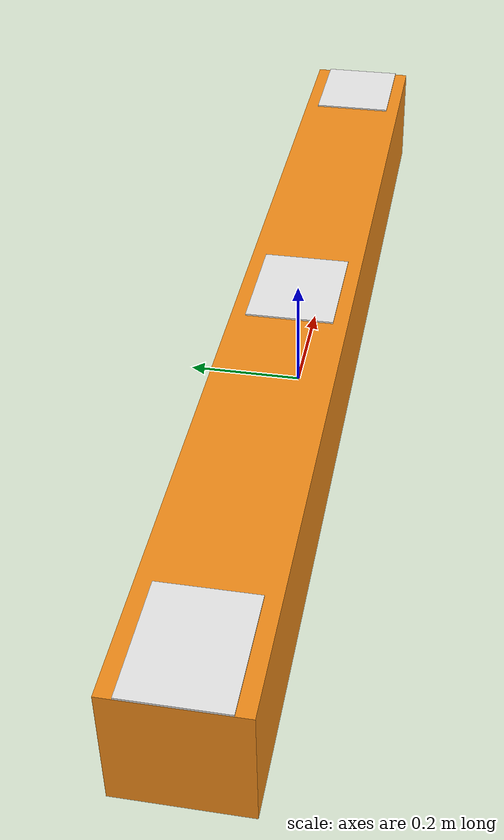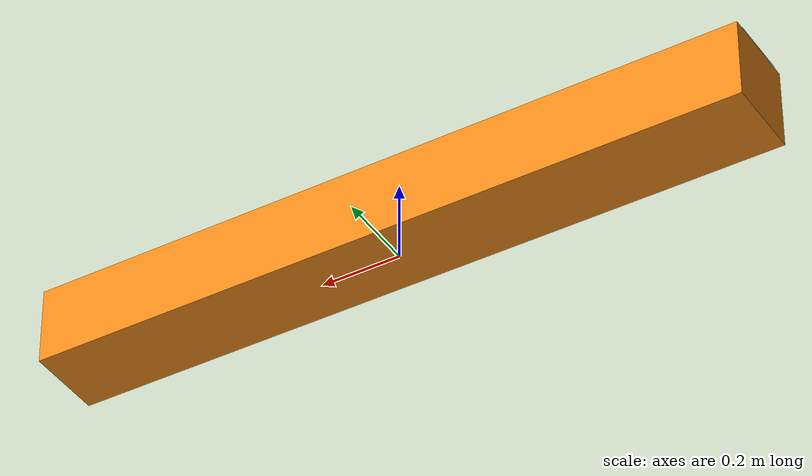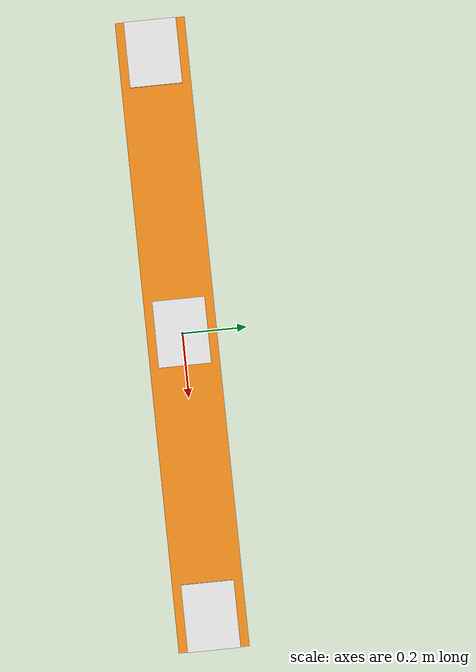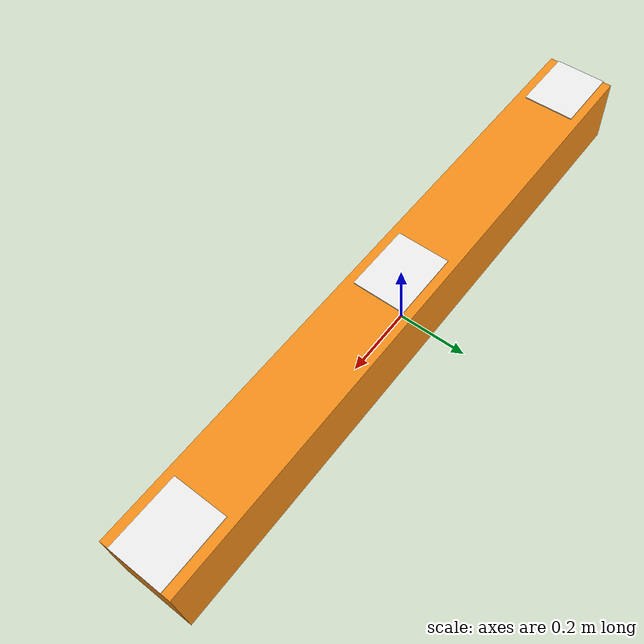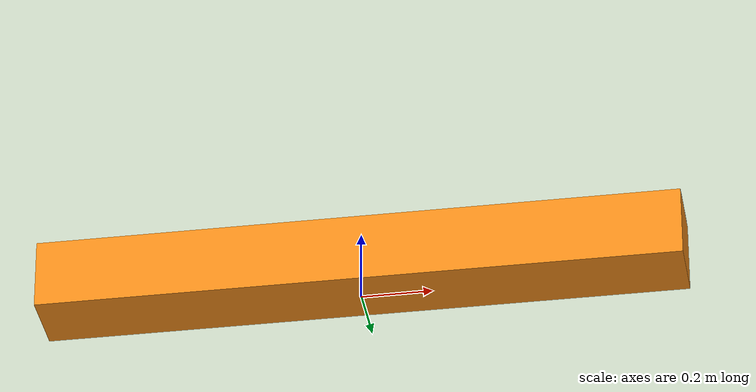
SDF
<?xml version="1.0" ?>
<sdf version="1.5">
  <model name="mbzirc_orange_brick">
      <static>0</static>
	  <link name="link">
		  <pose>0 0 0.1 0 0 0</pose>
	        <inertial>
	          <mass>1.2</mass>
	          <inertia>
	            <ixx>0.007968</ixx>
	            <ixy>0</ixy>
	            <ixz>0</ixz>
	            <iyy>0.326688</iyy>
	            <iyz>0</iyz>
	            <izz>0.326688</izz>
	          </inertia>
	        </inertial>
		  <visual name="main_box">
			<geometry>
		      <box>
		       	<size>1.8 0.2 0.2</size>
		      </box>
		   	</geometry>
		    <material>
              <script>
                <uri>file://media/materials/scripts/gazebo.material</uri>
                <name>Gazebo/Orange</name>
              </script>
            </material>
          </visual>
          <visual name="white_plate_center">
          	<pose>0 0 0.1 0 0 0</pose>
			<geometry>
		      <box>
		       	<size>0.19 0.15 0.006</size>
		      </box>
		   	</geometry>
		    <material>
              <script>
                <uri>file://media/materials/scripts/gazebo.material</uri>
                <name>Gazebo/White</name>
              </script>
            </material>
          </visual>
          <visual name="white_plate_left">
          	<pose>-0.805 0 0.1 0 0 0</pose>
			<geometry>
		      <box>
		       	<size>0.19 0.15 0.006</size>
		      </box>
		   	</geometry>
		    <material>
              <script>
                <uri>file://media/materials/scripts/gazebo.material</uri>
                <name>Gazebo/White</name>
              </script>
            </material>
          </visual>
          <visual name="white_plate_right">
          	<pose>0.805 0 0.1 0 0 0</pose>
			<geometry>
		      <box>
		       	<size>0.19 0.15 0.006</size>
		      </box>
		   	</geometry>
		    <material>
              <script>
                <uri>file://media/materials/scripts/gazebo.material</uri>
                <name>Gazebo/White</name>
              </script>
            </material>
          </visual>
	      <collision name="collision">
	        <pose>0 0 0 0 0 0</pose>
	        <geometry>
		      <box>
		       	<size>1.8 0.2 0.2</size>
		      </box>
		   	</geometry>
	        <max_contacts>10</max_contacts>
	        <surface>
	            <contact>
	              <ode/>
	            </contact>
	            <bounce/>
	            <friction>
	              <ode/>
	            </friction>
            </surface>
	      </collision>
	      <self_collide>0</self_collide>
          <kinematic>0</kinematic>
          <gravity>1</gravity>
	  </link>
  </model>
</sdf>
